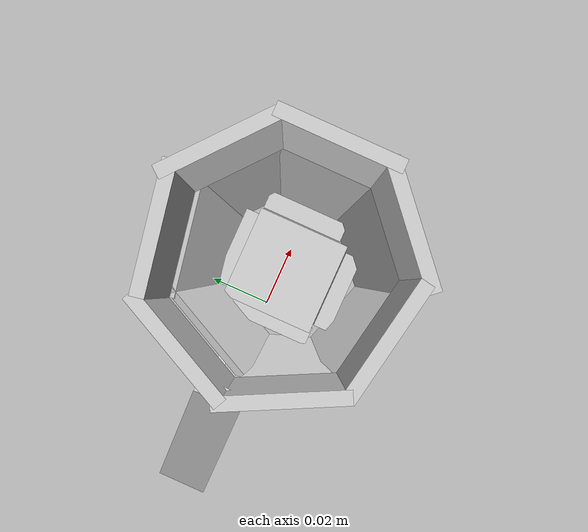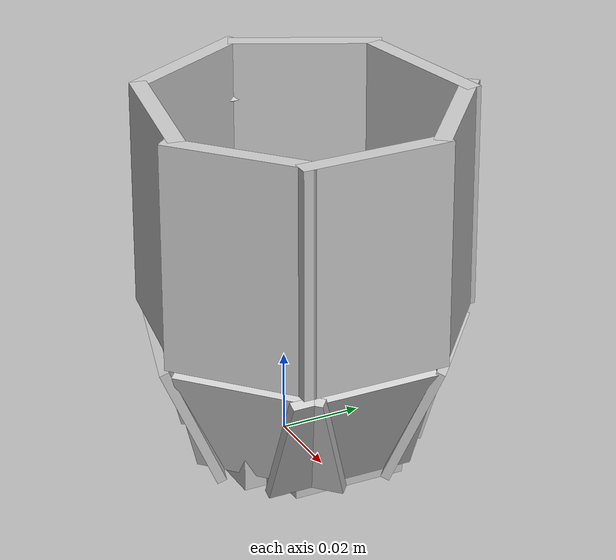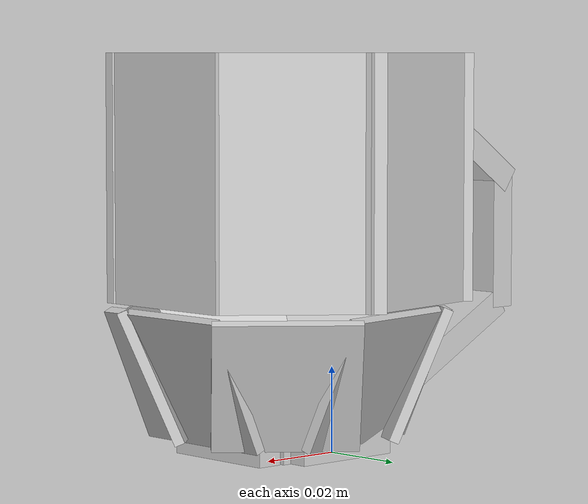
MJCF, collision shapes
<mujoco model="small_porcelain_mug">
  <asset>
    <texture file="../porcelain_mug/porcelain_mug_texture.png" name="tex-porcelain_mug" type="2d" />
    <material name="porcelain_mug" reflectance="0.5" texrepeat="1 1" texture="tex-porcelain_mug" texuniform="false" />
    <mesh file="../porcelain_mug/visual/porcelain_mug_vis.msh" name="porcelain_mug_vis" scale="0.85000 0.85000 0.85000" />
  </asset>
  <worldbody>
    <body>
      <body name="object">
        <geom solimp="0.998 0.998 0.001" solref="0.001 1" density="100" friction="0.95 0.3 0.1" type="mesh" mesh="porcelain_mug_vis" conaffinity="0" contype="0" group="1" material="porcelain_mug" />
        <geom solimp="0.998 0.998 0.001" solref="0.001 1" density="100" friction="0.95 0.3 0.1" type="box" pos="-0.05060 -0.00000 0.04762" quat="0.00000 0.00000 1.00000 0.00000" size="0.00320 0.00677 0.01679" group="0" rgba="0.8 0.8 0.8 0.3" />
        <geom solimp="0.998 0.998 0.001" solref="0.001 1" density="100" friction="0.95 0.3 0.1" type="box" pos="-0.03534 0.00000 0.02433" quat="0.50997 -0.00000 0.86019 -0.00000" size="0.00320 0.00677 0.01679" group="0" rgba="0.8 0.8 0.8 0.3" />
        <geom solimp="0.998 0.998 0.001" solref="0.001 1" density="100" friction="0.95 0.3 0.1" type="box" pos="-0.03936 -0.00000 0.07091" quat="0.46390 0.00000 -0.88589 0.00000" size="0.00320 0.00677 0.01679" group="0" rgba="0.8 0.8 0.8 0.3" />
        <geom solimp="0.998 0.998 0.001" solref="0.001 1" density="100" friction="0.95 0.3 0.1" type="box" pos="0.04826 -0.00125 0.06447" quat="0.00000 0.00000 1.00000 0.00000" size="0.00207 0.01839 0.02772" group="0" rgba="0.8 0.8 0.8 0.3" />
        <geom solimp="0.998 0.998 0.001" solref="0.001 1" density="100" friction="0.95 0.3 0.1" type="box" pos="0.01255 -0.00139 0.00646" quat="0.50000 -0.50000 0.50000 0.50000" size="0.00443 0.01581 0.01581" group="0" rgba="0.8 0.8 0.8 0.3" />
        <geom solimp="0.998 0.998 0.001" solref="0.001 1" density="100" friction="0.95 0.3 0.1" type="box" pos="0.04195 -0.00343 0.02031" quat="0.69215 0.69215 0.14468 -0.14468" size="0.00120 0.01606 0.01839" group="0" rgba="0.8 0.8 0.8 0.3" />
        <geom solimp="0.998 0.998 0.001" solref="0.001 1" density="100" friction="0.95 0.3 0.1" type="box" pos="0.03325 0.02077 0.02031" quat="0.68797 0.56492 0.42528 0.16339" size="0.00112 0.01586 0.01623" group="0" rgba="0.8 0.8 0.8 0.3" />
        <geom solimp="0.998 0.998 0.001" solref="0.001 1" density="100" friction="0.95 0.3 0.1" type="box" pos="0.03473 0.02650 0.06447" quat="0.00000 -0.42525 0.90508 0.00000" size="0.00207 0.01839 0.02772" group="0" rgba="0.8 0.8 0.8 0.3" />
        <geom solimp="0.998 0.998 0.001" solref="0.001 1" density="100" friction="0.95 0.3 0.1" type="box" pos="0.00746 0.03288 0.06447" quat="0.00000 -0.76965 0.63846 0.00000" size="0.00207 0.01839 0.02772" group="0" rgba="0.8 0.8 0.8 0.3" />
        <geom solimp="0.998 0.998 0.001" solref="0.001 1" density="100" friction="0.95 0.3 0.1" type="box" pos="0.00909 0.02437 0.02031" quat="0.55326 0.33057 0.62508 0.44034" size="0.00120 0.01606 0.01839" group="0" rgba="0.8 0.8 0.8 0.3" />
        <geom solimp="0.998 0.998 0.001" solref="0.001 1" density="100" friction="0.95 0.3 0.1" type="box" pos="-0.00968 0.01081 0.02031" quat="0.01588 -0.29770 -0.64138 0.70693" size="0.00120 0.01606 0.01839" group="0" rgba="0.8 0.8 0.8 0.3" />
        <geom solimp="0.998 0.998 0.001" solref="0.001 1" density="100" friction="0.95 0.3 0.1" type="box" pos="-0.01863 0.01519 0.06447" quat="0.00000 -0.97400 0.22653 0.00000" size="0.00207 0.01839 0.02772" group="0" rgba="0.8 0.8 0.8 0.3" />
        <geom solimp="0.998 0.998 0.001" solref="0.001 1" density="100" friction="0.95 0.3 0.1" type="box" pos="-0.01944 -0.01533 0.06447" quat="0.00000 -0.23315 0.97244 0.00000" size="0.00207 0.01839 0.02772" group="0" rgba="0.8 0.8 0.8 0.3" />
        <geom solimp="0.998 0.998 0.001" solref="0.001 1" density="100" friction="0.95 0.3 0.1" type="box" pos="-0.01487 -0.01169 0.02031" quat="0.02182 -0.26310 0.65634 0.70677" size="0.00119 0.01603 0.01693" group="0" rgba="0.8 0.8 0.8 0.3" />
        <geom solimp="0.998 0.998 0.001" solref="0.001 1" density="100" friction="0.95 0.3 0.1" type="box" pos="0.00702 -0.02973 0.02031" quat="0.52881 -0.29653 0.64193 -0.46942" size="0.00120 0.01605 0.01759" group="0" rgba="0.8 0.8 0.8 0.3" />
        <geom solimp="0.998 0.998 0.001" solref="0.001 1" density="100" friction="0.95 0.3 0.1" type="box" pos="0.00549 -0.03395 0.06447" quat="-0.00000 -0.76567 -0.64323 -0.00000" size="0.00207 0.01839 0.02772" group="0" rgba="0.8 0.8 0.8 0.3" />
        <geom solimp="0.998 0.998 0.001" solref="0.001 1" density="100" friction="0.95 0.3 0.1" type="box" pos="0.03546 -0.02760 0.06447" quat="0.00000 0.41049 0.91187 0.00000" size="0.00207 0.01839 0.02772" group="0" rgba="0.8 0.8 0.8 0.3" />
        <geom solimp="0.998 0.998 0.001" solref="0.001 1" density="100" friction="0.95 0.3 0.1" type="box" pos="0.03222 -0.02194 0.02031" quat="0.69053 -0.57176 0.41604 -0.15219" size="0.00120 0.01606 0.01839" group="0" rgba="0.8 0.8 0.8 0.3" />
        <geom solimp="0.998 0.998 0.001" solref="0.001 1" density="100" friction="0.95 0.3 0.1" type="box" pos="0.01300 -0.02032 0.00646" quat="0.50000 0.50000 -0.50000 -0.50000" size="0.00277 0.00443 0.01321" group="0" rgba="0.8 0.8 0.8 0.3" />
        <geom solimp="0.998 0.998 0.001" solref="0.001 1" density="100" friction="0.95 0.3 0.1" type="box" pos="0.03187 -0.00014 0.00646" quat="0.70711 0.70711 0.00000 -0.00000" size="0.00306 0.00443 0.01397" group="0" rgba="0.8 0.8 0.8 0.3" />
        <geom solimp="0.998 0.998 0.001" solref="0.001 1" density="100" friction="0.95 0.3 0.1" type="box" pos="-0.00445 -0.00358 0.00646" quat="0.70711 0.70711 0.00000 -0.00000" size="0.00306 0.00443 0.01397" group="0" rgba="0.8 0.8 0.8 0.3" />
        <geom solimp="0.998 0.998 0.001" solref="0.001 1" density="100" friction="0.95 0.3 0.1" type="box" pos="0.01300 0.01604 0.00646" quat="0.50000 0.50000 -0.50000 -0.50000" size="0.00277 0.00443 0.01321" group="0" rgba="0.8 0.8 0.8 0.3" />
      </body>
      <site rgba="0 0 0 0" size="0.00425" pos="0.00000 0.00000 -0.05100" name="bottom_site" />
      <site rgba="0 0 0 0" size="0.00425" pos="0.00000 0.00000 0.03400" name="top_site" />
      <site rgba="0 0 0 0" size="0.00425" pos="0.02125 0.02125 0.00000" name="horizontal_radius_site" />
    </body>
  </worldbody>
</mujoco>
